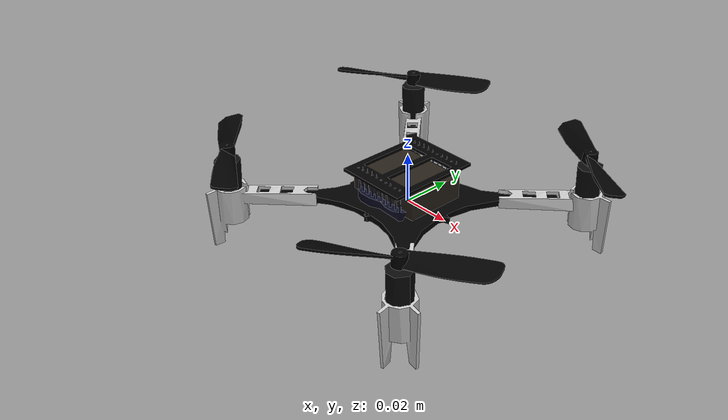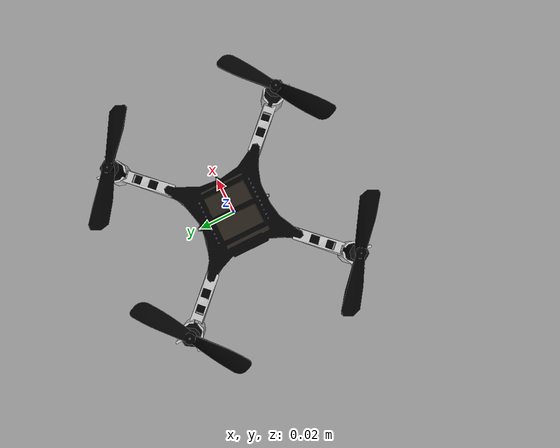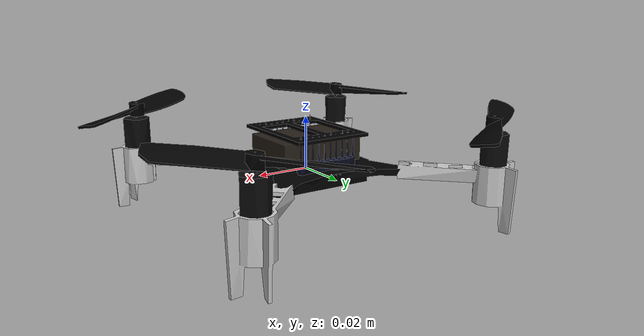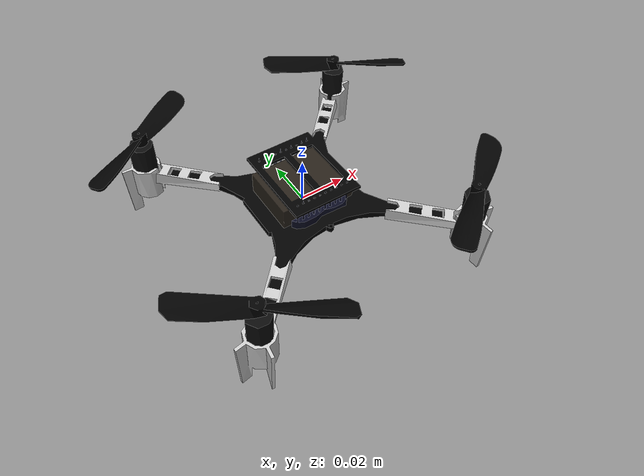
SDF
<?xml version="1.0" ?>
<sdf version="1.8">
    <model name="crazyflie">
        <pose>0 0 0.0 0 0 3.14</pose>
        <link name="crazyflie/body">
        <inertial>
            <pose frame="">0 0 0 0 0 0</pose>
            <mass>0.025</mass>
            <inertia>
                <ixx>0.000016572</ixx>
                <ixy>0.00</ixy>
                <ixz>0.00</ixz>
                <iyy>0.000016656</iyy>
                <iyz>0.00000</iyz>
                <izz>0.000029262</izz>
            </inertia>
        </inertial>
        <collision name="crazyflie/body_collision">
            <pose frame="">0 0 0 0 0 0</pose>
            <geometry>
                <box>
                    <size>0.10 0.10 0.03</size>
                </box>
            </geometry>
        </collision>
        <visual name="crazyflie/body_visual">
            <pose frame="">0 0 0 0 -0 0</pose>
            <geometry>
                <mesh>
                    <scale>1 1 1</scale>
                    <uri>model://crazyflie/meshes/crazyflie_body.dae</uri>
                </mesh>
            </geometry>
        </visual>
        </link>
        <link name="crazyflie/m1_prop">
            <pose frame="">0.048 -0.048 0.021 0 0 0</pose>
            <inertial>
                <pose frame="">0 0 0 0 -0 0</pose>
                <mass>0.0008</mass>
                <inertia>
                    <ixx>0.000000002*70</ixx>
                    <iyy>0.000000167*70</iyy>
                    <izz>0.000000168*70</izz>
                    <ixy>0</ixy>
                    <ixz>0</ixz>
                    <iyz>0</iyz>
                </inertia>
            </inertial>
            <visual name="crazyflie/m1_visual">
                <pose frame="">0 0 0 0 -0 0</pose>
                <geometry>
                    <mesh>
                        <scale>1 1 1</scale>
                        <uri>model://crazyflie/meshes/crazyflie_ccw_propeller.dae</uri>
                    </mesh>
                </geometry>
            </visual>
        </link>
        <link name="crazyflie/m2_prop">
            <pose frame="">-0.048 -0.048 0.021 0 0 0</pose>
            <inertial>
                <pose frame="">0 0 0 0 -0 0</pose>
                <mass>0.0008</mass>
                <inertia>
                    <ixx>0.000000002*50</ixx>
                    <iyy>0.000000167*50</iyy>
                    <izz>0.000000168*50</izz>
                    <ixy>0</ixy>
                    <ixz>0</ixz>
                    <iyz>0</iyz>
                </inertia>
            </inertial>
            <visual name="crazyflie/m2_visual">
                <pose frame="">0 0 0 0 -0 0</pose>
                <geometry>
                    <mesh>
                        <scale>1 1 1</scale>
                        <uri>model://crazyflie/meshes/crazyflie_cw_propeller.dae</uri>
                    </mesh>
                </geometry>
            </visual>
        </link>
        <link name="crazyflie/m3_prop">
            <pose frame="">-0.048 0.048 0.021 0 0 0</pose>
            <inertial>
                <pose frame="">0 0 0 0 -0 0</pose>
                <mass>0.0008</mass>
                <inertia>
                    <ixx>0.000000002*50</ixx>
                    <iyy>0.000000167*50</iyy>
                    <izz>0.000000168*50</izz>
                    <ixy>0</ixy>
                    <ixz>0</ixz>
                    <iyz>0</iyz>
                </inertia>
            </inertial>
            <visual name="crazyflie/m3_visual">
                <pose frame="">0 0 0 0 -0 0</pose>
                <geometry>
                    <mesh>
                        <scale>1 1 1</scale>
                        <uri>model://crazyflie/meshes/crazyflie_ccw_propeller.dae</uri>
                    </mesh>
                </geometry>
            </visual>
        </link>
        <link name="crazyflie/m4_prop">
            <pose frame="">0.048 0.048 0.021 0 0 0</pose>
            <inertial>
                <pose frame="">0 0 0 0 -0 0</pose>
                <mass>0.0008</mass>
                <inertia>
                    <ixx>0.000000002*50</ixx>
                    <iyy>0.000000167*50</iyy>
                    <izz>0.000000168*50</izz>
                    <ixy>0</ixy>
                    <ixz>0</ixz>
                    <iyz>0</iyz>
                </inertia>
            </inertial>
            <visual name="crazyflie/m4_visual">
                <pose frame="">0 0 0 0 -0 0</pose>
                <geometry>
                    <mesh>
                        <scale>1 1 1</scale>
                        <uri>model://crazyflie/meshes/crazyflie_cw_propeller.dae</uri>
                    </mesh>
                </geometry>
            </visual>
        </link>
        <joint name="crazyflie/m1_joint" type="revolute">
            <child>crazyflie/m1_prop</child>
            <parent>crazyflie/body</parent>
            <axis>
                <xyz>0 0 1</xyz>
                <limit>
                    <lower>-1e+16</lower>
                    <upper>1e+16</upper>
                </limit>
                <dynamics>
                    <spring_reference>0</spring_reference>
                    <spring_stiffness>0</spring_stiffness>
                </dynamics>
                <use_parent_model_frame>1</use_parent_model_frame>
            </axis>
        </joint>
                <joint name="crazyflie/m2_joint" type="revolute">
            <child>crazyflie/m2_prop</child>
            <parent>crazyflie/body</parent>
            <axis>
                <xyz>0 0 1</xyz>
                <limit>
                    <lower>-1e+16</lower>
                    <upper>1e+16</upper>
                </limit>
                <dynamics>
                    <spring_reference>0</spring_reference>
                    <spring_stiffness>0</spring_stiffness>
                </dynamics>
                <use_parent_model_frame>1</use_parent_model_frame>
            </axis>
        </joint>
                <joint name="crazyflie/m3_joint" type="revolute">
            <child>crazyflie/m3_prop</child>
            <parent>crazyflie/body</parent>
            <axis>
                <xyz>0 0 1</xyz>
                <limit>
                    <lower>-1e+16</lower>
                    <upper>1e+16</upper>
                </limit>
                <dynamics>
                    <spring_reference>0</spring_reference>
                    <spring_stiffness>0</spring_stiffness>
                </dynamics>
                <use_parent_model_frame>1</use_parent_model_frame>
            </axis>
        </joint>
        <joint name="crazyflie/m4_joint" type="revolute">
            <child>crazyflie/m4_prop</child>
            <parent>crazyflie/body</parent>
            <axis>
                <xyz>0 0 1</xyz>
                <limit>
                    <lower>-1e+16</lower>
                    <upper>1e+16</upper>
                </limit>
                <dynamics>
                    <spring_reference>0</spring_reference>
                    <spring_stiffness>0</spring_stiffness>
                </dynamics>
                <use_parent_model_frame>1</use_parent_model_frame>
            </axis>
        </joint>
    <plugin
        filename="ignition-gazebo-multicopter-motor-model-system"
        name="ignition::gazebo::systems::MulticopterMotorModel">
        <robotNamespace>crazyflie</robotNamespace>
        <jointName>crazyflie/m1_joint</jointName>
        <linkName>crazyflie/m1_prop</linkName>
        <turningDirection>ccw</turningDirection>
        <timeConstantUp>0.0125</timeConstantUp>
        <timeConstantDown>0.025</timeConstantDown>
        <maxRotVelocity>2618</maxRotVelocity>
        <motorConstant>1.28192e-08</motorConstant>
        <momentConstant>0.005964552</momentConstant>
        <commandSubTopic>gazebo/command/motor_speed</commandSubTopic>
        <motorNumber>0</motorNumber>
        <rotorDragCoefficient>8.06428e-05</rotorDragCoefficient>
        <rollingMomentCoefficient>0.0000001</rollingMomentCoefficient>
        <motorSpeedPubTopic>motor_speed/0</motorSpeedPubTopic>
        <rotorVelocitySlowdownSim>150</rotorVelocitySlowdownSim>
        <motorType>velocity</motorType>
      </plugin>
      <plugin
        filename="ignition-gazebo-multicopter-motor-model-system"
        name="ignition::gazebo::systems::MulticopterMotorModel">
        <robotNamespace>crazyflie</robotNamespace>
        <jointName>crazyflie/m2_joint</jointName>
        <linkName>crazyflie/m2_prop</linkName>
        <turningDirection>cw</turningDirection>
        <timeConstantUp>0.0125</timeConstantUp>
        <timeConstantDown>0.025</timeConstantDown>
        <maxRotVelocity>2618</maxRotVelocity>
        <motorConstant>1.28192e-08</motorConstant>
        <momentConstant>0.005964552</momentConstant>
        <commandSubTopic>gazebo/command/motor_speed</commandSubTopic>
        <motorNumber>1</motorNumber>
        <rotorDragCoefficient>8.06428e-05</rotorDragCoefficient>
        <rollingMomentCoefficient>0.0000001</rollingMomentCoefficient>
        <motorSpeedPubTopic>motor_speed/1</motorSpeedPubTopic>
        <rotorVelocitySlowdownSim>150</rotorVelocitySlowdownSim>
        <motorType>velocity</motorType>
      </plugin>
      <plugin
        filename="ignition-gazebo-multicopter-motor-model-system"
        name="ignition::gazebo::systems::MulticopterMotorModel">
        <robotNamespace>crazyflie</robotNamespace>
        <jointName>crazyflie/m3_joint</jointName>
        <linkName>crazyflie/m3_prop</linkName>
        <turningDirection>ccw</turningDirection>
        <timeConstantUp>0.0125</timeConstantUp>
        <timeConstantDown>0.025</timeConstantDown>
        <maxRotVelocity>2618</maxRotVelocity>
        <motorConstant>1.28192e-08</motorConstant>
        <momentConstant>0.005964552</momentConstant>
        <commandSubTopic>gazebo/command/motor_speed</commandSubTopic>
        <motorNumber>2</motorNumber>
        <rotorDragCoefficient>8.06428e-05</rotorDragCoefficient>
        <rollingMomentCoefficient>0.0000001</rollingMomentCoefficient>
        <motorSpeedPubTopic>motor_speed/2</motorSpeedPubTopic>
        <rotorVelocitySlowdownSim>150</rotorVelocitySlowdownSim>
        <motorType>velocity</motorType>
      </plugin>
      <plugin
        filename="ignition-gazebo-multicopter-motor-model-system"
        name="ignition::gazebo::systems::MulticopterMotorModel">
        <robotNamespace>crazyflie</robotNamespace>
        <jointName>crazyflie/m4_joint</jointName>
        <linkName>crazyflie/m4_prop</linkName>
        <turningDirection>cw</turningDirection>
        <timeConstantUp>0.0125</timeConstantUp>
        <timeConstantDown>0.025</timeConstantDown>
        <maxRotVelocity>2618</maxRotVelocity>
        <motorConstant>1.28192e-08</motorConstant>
        <momentConstant>0.005964552</momentConstant>
        <commandSubTopic>gazebo/command/motor_speed</commandSubTopic>
        <motorNumber>3</motorNumber>
        <rotorDragCoefficient>8.06428e-05</rotorDragCoefficient>
        <rollingMomentCoefficient>0.000001</rollingMomentCoefficient>
        <motorSpeedPubTopic>motor_speed/3</motorSpeedPubTopic>
        <rotorVelocitySlowdownSim>150</rotorVelocitySlowdownSim>
        <motorType>velocity</motorType>
      </plugin>
      <plugin
        filename="ignition-gazebo-multicopter-control-system"
        name="ignition::gazebo::systems::MulticopterVelocityControl">
        <robotNamespace>crazyflie</robotNamespace>
        <commandSubTopic>gazebo/command/twist</commandSubTopic>
        <enableSubTopic>enable</enableSubTopic>
        <comLinkName>crazyflie/body</comLinkName>
        <velocityGain>1000 1000 5000</velocityGain>
        <attitudeGain>0.5 0.5 0.5</attitudeGain>
        <angularRateGain>1.5 1.5 1.5</angularRateGain>
        <maximumAngularVelocity>3 3 3</maximumAngularVelocity>

        <rotorConfiguration>
          <rotor>
            <jointName>crazyflie/m1_joint</jointName>
            <forceConstant>1.28192e-08</forceConstant>
            <momentConstant>0.005964552</momentConstant>
            <direction>1</direction>
          </rotor>
          <rotor>
            <jointName>crazyflie/m2_joint</jointName>
            <forceConstant>1.28192e-08</forceConstant>
            <momentConstant>0.005964552</momentConstant>
            <direction>-1</direction>
          </rotor>
          <rotor>
            <jointName>crazyflie/m3_joint</jointName>
            <forceConstant>1.28192e-08</forceConstant>
            <momentConstant>0.005964552</momentConstant>
            <direction>1</direction>
          </rotor>
          <rotor>
            <jointName>crazyflie/m4_joint</jointName>
            <forceConstant>1.28192e-08</forceConstant>
            <momentConstant>0.005964552</momentConstant>
            <direction>-1</direction>
          </rotor>
        </rotorConfiguration>
      </plugin>
      <plugin
        filename="ignition-gazebo-odometry-publisher-system"
        name="ignition::gazebo::systems::OdometryPublisher">
        <dimensions>3</dimensions>
      </plugin>
    </model>
</sdf>
